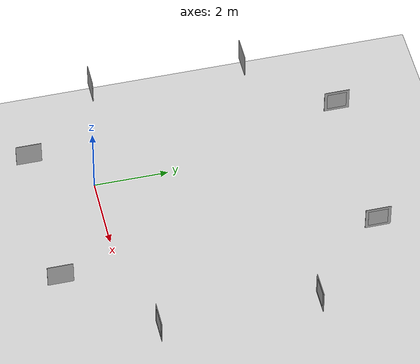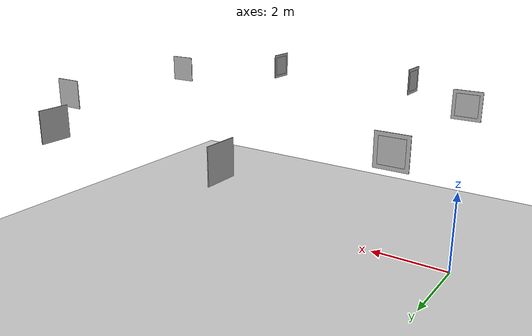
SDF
<sdf version="1.5">
 <world name="default">
  <include><uri>model://sun</uri></include>
  <include><uri>model://ground_plane</uri></include>
  <include><uri>model://asphalt_plane</uri></include>
  <model name="aruco_1">
   <static>1</static>
   <link name="link">
    <pose>0 0 4 0 0 1.57</pose>
    <visual name="visual">
     <geometry><box><size>0.015 0.5 0.5</size></box></geometry>
     <material>
      <script>
       <uri>model://aruco_4x4_7/materials/scripts</uri>
       <uri>model://aruco_4x4_7/materials/textures</uri>
       <name>aruco_4x4_7/Diffuse</name>
      </script>
     </material>
    </visual>
    <visual name="aruco_frame">
     <pose>-0.001 0 0 0 -0 0</pose>
     <geometry><box><size>0.015 0.65 0.65</size></box></geometry>
    </visual>
    <collision name="collision"><geometry><box><size>0.015 0.65 0.65</size></box></geometry></collision>
   </link>
  </model>
  <model name="aruco_2">
   <static>1</static>
   <link name="link">
    <pose>0 4 4 0 0 1.57</pose>
    <visual name="visual">
     <geometry><box><size>0.015 0.5 0.5</size></box></geometry>
     <material>
      <script>
       <uri>model://aruco_4x4_7/materials/scripts</uri>
       <uri>model://aruco_4x4_7/materials/textures</uri>
       <name>aruco_4x4_7/Diffuse</name>
      </script>
     </material>
    </visual>
    <visual name="aruco_frame">
     <pose>-0.001 0 0 0 -0 0</pose>
     <geometry><box><size>0.015 0.65 0.65</size></box></geometry>
    </visual>
    <collision name="collision"><geometry><box><size>0.015 0.65 0.65</size></box></geometry></collision>
   </link>
  </model>
  <model name="aruco_3">
   <static>1</static>
   <link name="link">
    <pose>2 6 4 0 0 0</pose>
    <visual name="visual">
     <geometry><box><size>0.015 0.5 0.5</size></box></geometry>
     <material>
      <script>
       <uri>model://aruco_4x4_7/materials/scripts</uri>
       <uri>model://aruco_4x4_7/materials/textures</uri>
       <name>aruco_4x4_7/Diffuse</name>
      </script>
     </material>
    </visual>
    <visual name="aruco_frame">
     <pose>-0.001 0 0 0 -0 0</pose>
     <geometry><box><size>0.015 0.65 0.65</size></box></geometry>
    </visual>
    <collision name="collision"><geometry><box><size>0.015 0.65 0.65</size></box></geometry></collision>
   </link>
  </model>
  <model name="aruco_4">
   <static>1</static>
   <link name="link">
    <pose>6 6 4 0 0 0</pose>
    <visual name="visual">
     <geometry><box><size>0.015 0.5 0.5</size></box></geometry>
     <material>
      <script>
       <uri>model://aruco_4x4_7/materials/scripts</uri>
       <uri>model://aruco_4x4_7/materials/textures</uri>
       <name>aruco_4x4_7/Diffuse</name>
      </script>
     </material>
    </visual>
    <visual name="aruco_frame">
     <pose>-0.001 0 0 0 -0 0</pose>
     <geometry><box><size>0.015 0.65 0.65</size></box></geometry>
    </visual>
    <collision name="collision"><geometry><box><size>0.015 0.65 0.65</size></box></geometry></collision>
   </link>
  </model>
  <model name="aruco_5">
   <static>1</static>
   <link name="link">
    <pose>8 4 4 0 0 -1.57</pose>
    <visual name="visual">
     <geometry><box><size>0.015 0.5 0.5</size></box></geometry>
     <material>
      <script>
       <uri>model://aruco_4x4_7/materials/scripts</uri>
       <uri>model://aruco_4x4_7/materials/textures</uri>
       <name>aruco_4x4_7/Diffuse</name>
      </script>
     </material>
    </visual>
    <visual name="aruco_frame">
     <pose>-0.001 0 0 0 -0 0</pose>
     <geometry><box><size>0.015 0.65 0.65</size></box></geometry>
    </visual>
    <collision name="collision"><geometry><box><size>0.015 0.65 0.65</size></box></geometry></collision>
   </link>
  </model>
  <model name="aruco_6">
   <static>1</static>
   <link name="link">
    <pose>8 0 4 0 0 -1.57</pose>
    <visual name="visual">
     <geometry><box><size>0.015 0.5 0.5</size></box></geometry>
     <material>
      <script>
       <uri>model://aruco_4x4_7/materials/scripts</uri>
       <uri>model://aruco_4x4_7/materials/textures</uri>
       <name>aruco_4x4_7/Diffuse</name>
      </script>
     </material>
    </visual>
    <visual name="aruco_frame">
     <pose>-0.001 0 0 0 -0 0</pose>
     <geometry><box><size>0.015 0.65 0.65</size></box></geometry>
    </visual>
    <collision name="collision"><geometry><box><size>0.015 0.65 0.65</size></box></geometry></collision>
   </link>
  </model>
  <model name="aruco_7">
   <static>1</static>
   <link name="link">
    <pose>6 -2 4 0 0 3.14</pose>
    <visual name="visual">
     <geometry><box><size>0.015 0.5 0.5</size></box></geometry>
     <material>
      <script>
       <uri>model://aruco_4x4_7/materials/scripts</uri>
       <uri>model://aruco_4x4_7/materials/textures</uri>
       <name>aruco_4x4_7/Diffuse</name>
      </script>
     </material>
    </visual>
    <visual name="aruco_frame">
     <pose>-0.001 0 0 0 -0 0</pose>
     <geometry><box><size>0.015 0.65 0.65</size></box></geometry>
    </visual>
    <collision name="collision"><geometry><box><size>0.015 0.65 0.65</size></box></geometry></collision>
   </link>
  </model>
  <model name="aruco_8">
   <static>1</static>
   <link name="link">
    <pose>2 -2 4 0 0 3.14</pose>
    <visual name="visual">
     <geometry><box><size>0.015 0.5 0.5</size></box></geometry>
     <material>
      <script>
       <uri>model://aruco_4x4_7/materials/scripts</uri>
       <uri>model://aruco_4x4_7/materials/textures</uri>
       <name>aruco_4x4_7/Diffuse</name>
      </script>
     </material>
    </visual>
    <visual name="aruco_frame">
     <pose>-0.001 0 0 0 -0 0</pose>
     <geometry><box><size>0.015 0.65 0.65</size></box></geometry>
    </visual>
    <collision name="collision"><geometry><box><size>0.015 0.65 0.65</size></box></geometry></collision>
   </link>
  </model>
  <plugin name="ros_interface_plugin" filename="librotors_gazebo_ros_interface_plugin.so"/>
  <physics name="default_physics" default="0" type="ode">
   <gravity>0 0 -9.8066</gravity>
   <ode>
    <solver>
     <type>quick</type>
     <iters>10</iters>
     <sor>1.3</sor>
     <use_dynamic_moi_rescaling>0</use_dynamic_moi_rescaling>
    </solver>
    <constraints>
     <cfm>0</cfm>
     <erp>0.2</erp>
     <contact_max_correcting_vel>100</contact_max_correcting_vel>
     <contact_surface_layer>0.001</contact_surface_layer>
    </constraints>
   </ode>
   <max_step_size>0.002</max_step_size>
   <real_time_factor>1</real_time_factor>
   <real_time_update_rate>500</real_time_update_rate>
   <magnetic_field>6e-06 2.3e-05 -4.2e-05</magnetic_field>
  </physics>
 </world>
</sdf>
